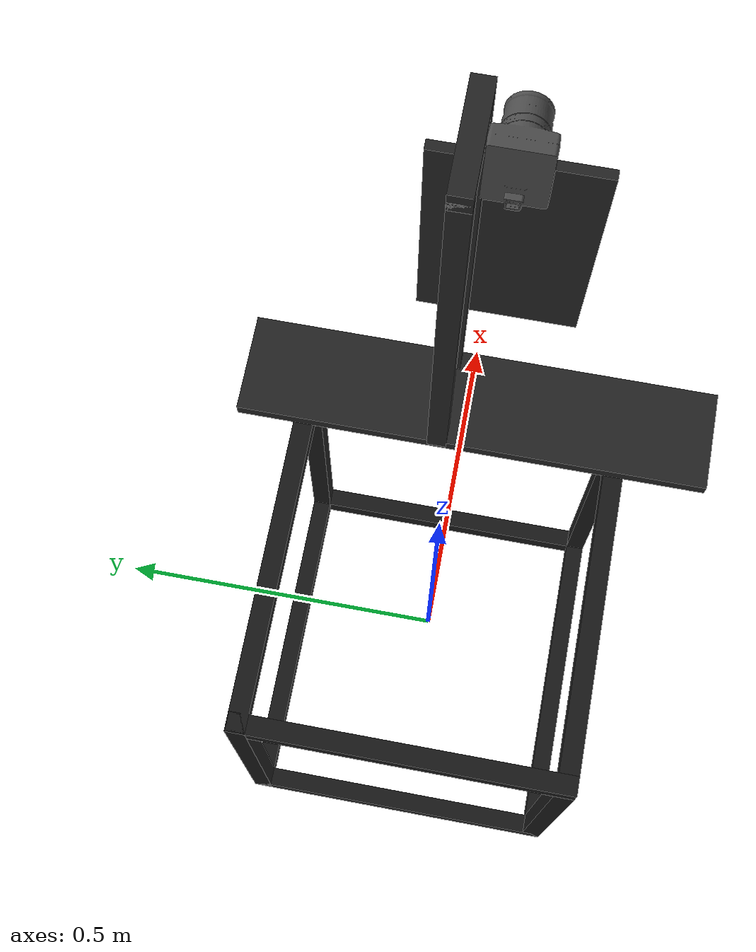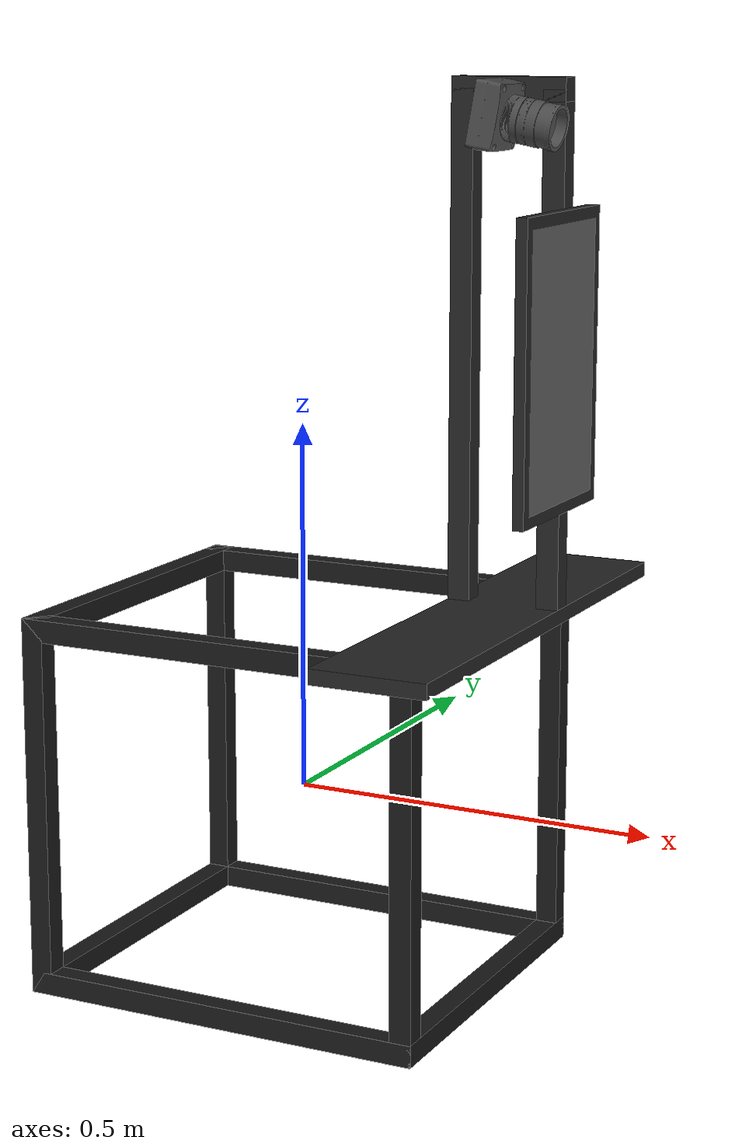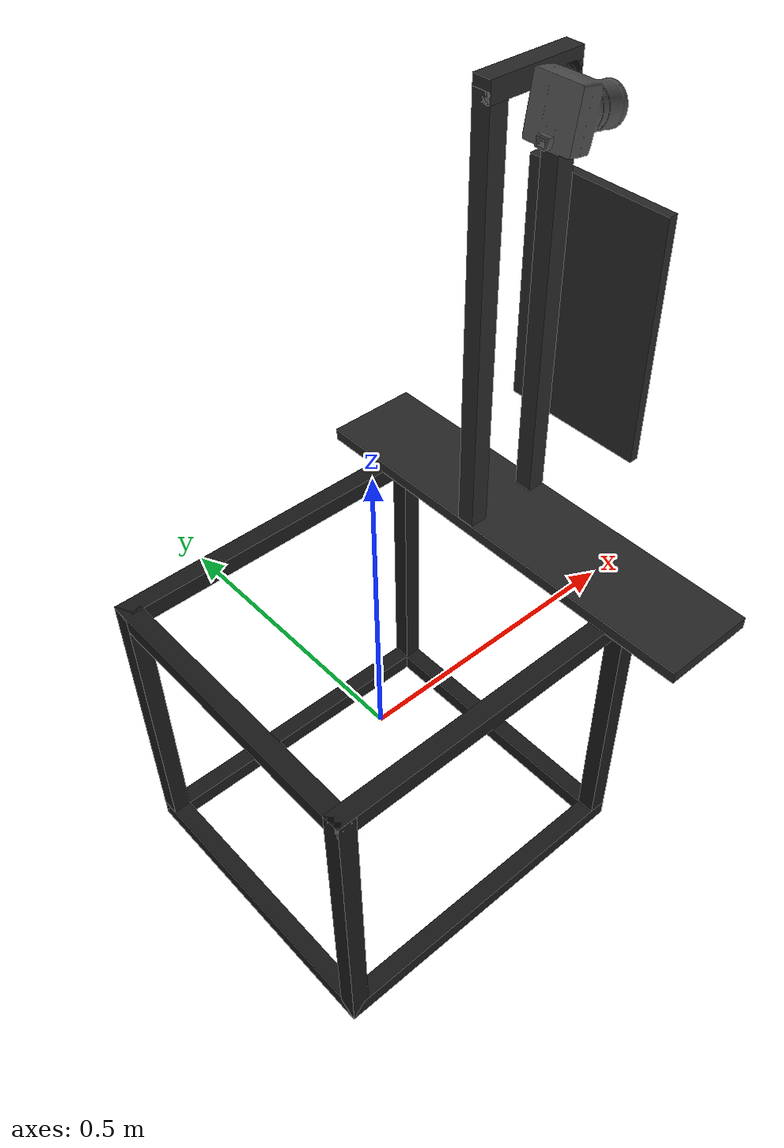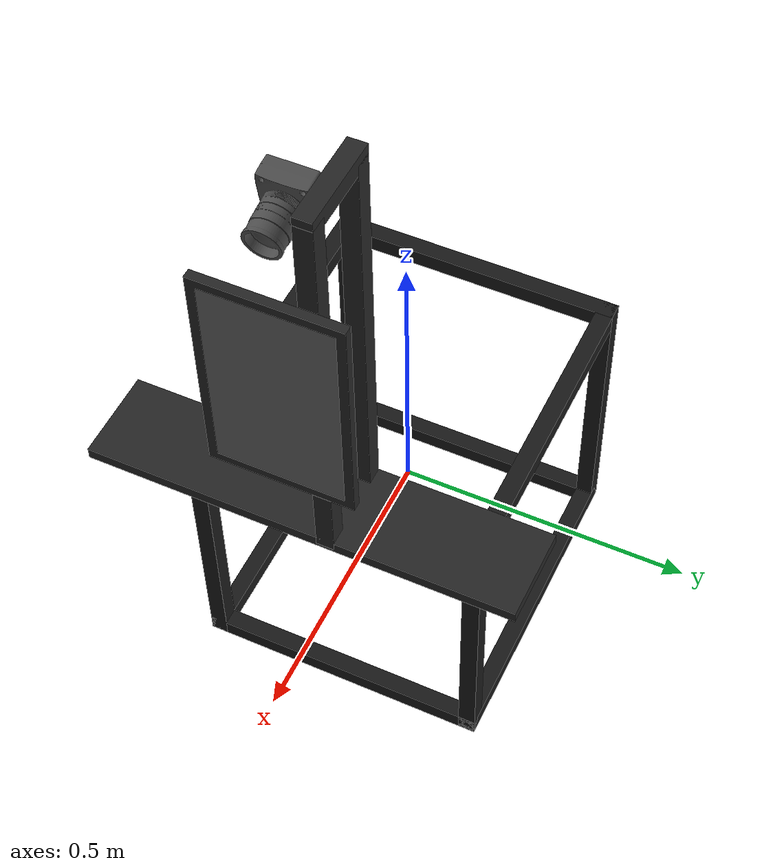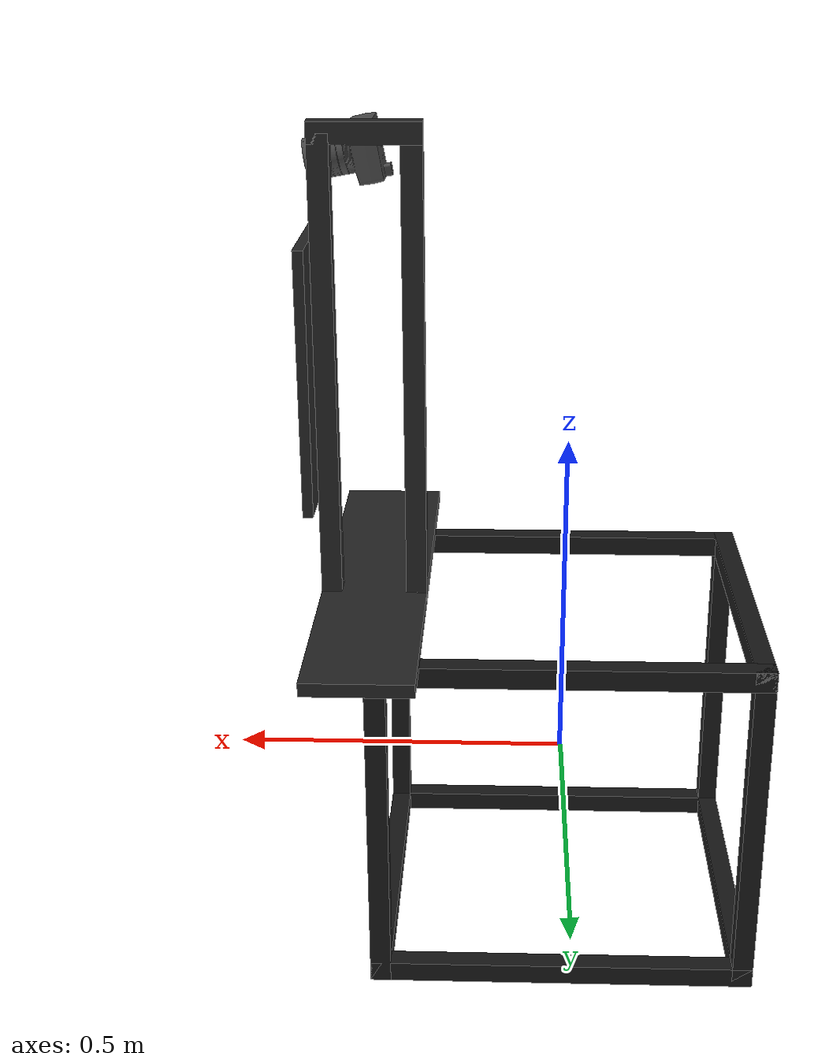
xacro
<?xml version="1.0" encoding="utf-8"?>
<robot xmlns:xacro="http://www.ros.org/wiki/xacro" name="panda">

	<!-- box shaped table as base for the 2 Pandas -->
	<!-- prop in meters -->

  <xacro:property name="height_base" value="0.52"/>
  <xacro:property name="width_base" value="0.51"/>
  <xacro:property name="length_base" value="0.565"/>
  <xacro:property name="dist_arms" value="0.54"/>
  <xacro:property name="edge_thickness" value="0.03" />

	<link name="base">
		<!-- Box edge visualization -->
		<!-- Top face -->
		<visual>
			<origin xyz="${length_base/2-edge_thickness/2} 0 ${-height_base/2 + edge_thickness/2}" rpy="0 0 0"/>
			<geometry>
				<box size="${edge_thickness} ${width_base} ${edge_thickness}" />
			</geometry>
			<material name="Mat Black 1">
				<color rgba="0.1 0.1 0.1 1.0"/>
			</material>
		</visual>

		<visual>
			<origin xyz="${length_base/2-edge_thickness/2} 0 ${height_base/2 - edge_thickness/2}" rpy="0 0 0"/>
			<geometry>
				<box size="${edge_thickness} ${width_base} ${edge_thickness}" />
			</geometry>
			<material name="Mat Black 1">
				<color rgba="0.1 0.1 0.1 1.0"/>
			</material>
		</visual>

		<visual>
			<origin xyz="${length_base/2-edge_thickness/2} ${-width_base/2 + edge_thickness/2} 0" rpy="0 0 0"/>
			<geometry>
				<box size="${edge_thickness} ${edge_thickness} ${height_base}" />
			</geometry>
			<material name="Mat Black 1">
				<color rgba="0.1 0.1 0.1 1.0"/>
			</material>
		</visual>

		<visual>
			<origin xyz="${length_base/2-edge_thickness/2} ${width_base/2 - edge_thickness/2} 0" rpy="0 0 0"/>
			<geometry>
				<box size="${edge_thickness} ${edge_thickness} ${height_base}" />
			</geometry>
			<material name="Mat Black 1">
				<color rgba="0.1 0.1 0.1 1.0"/>
			</material>
		</visual>

		<!-- Bottom face -->
		<visual>
			<origin xyz="${-length_base/2+edge_thickness/2} 0 ${-height_base/2 + edge_thickness/2}" rpy="0 0 0"/>
			<geometry>
				<box size="${edge_thickness} ${width_base} ${edge_thickness}" />
			</geometry>
			<material name="Mat Black 1">
				<color rgba="0.1 0.1 0.1 1.0"/>
			</material>
		</visual>

		<visual>
			<origin xyz="${-length_base/2+edge_thickness/2} 0 ${height_base/2 - edge_thickness/2}" rpy="0 0 0"/>
			<geometry>
				<box size="${edge_thickness} ${width_base} ${edge_thickness}" />
			</geometry>
			<material name="Mat Black 1">
				<color rgba="0.1 0.1 0.1 1.0"/>
			</material>
		</visual>

		<visual>
			<origin xyz="${-length_base/2+edge_thickness/2} ${-width_base/2 + edge_thickness/2} 0" rpy="0 0 0"/>
			<geometry>
				<box size="${edge_thickness} ${edge_thickness} ${height_base}" />
			</geometry>
			<material name="Mat Black 1">
				<color rgba="0.1 0.1 0.1 1.0"/>
			</material>
		</visual>

		<visual>
			<origin xyz="${-length_base/2+edge_thickness/2} ${width_base/2 - edge_thickness/2} 0" rpy="0 0 0"/>
			<geometry>
				<box size="${edge_thickness} ${edge_thickness} ${height_base}" />
			</geometry>
			<material name="Mat Black 1">
				<color rgba="0.1 0.1 0.1 1.0"/>
			</material>
		</visual>

		<!-- Side faces -->

		<!-- right -->
		<visual>
			<origin xyz="0 ${width_base/2-edge_thickness/2} ${-height_base/2 + edge_thickness/2}" rpy="0 0 0"/>
			<geometry>
				<box size="${length_base} ${edge_thickness} ${edge_thickness}" />
			</geometry>
			<material name="Mat Black 1">
				<color rgba="0.1 0.1 0.1 1.0"/>
			</material>
		</visual>

		<visual>
			<origin xyz="0 ${width_base/2-edge_thickness/2} ${height_base/2 - edge_thickness/2}" rpy="0 0 0"/>
			<geometry>
				<box size="${length_base} ${edge_thickness} ${edge_thickness}" />
			</geometry>
			<material name="Mat Black 1">
				<color rgba="0.1 0.1 0.1 1.0"/>
			</material>
		</visual>

		<visual>
			<origin xyz="${-length_base/2 + edge_thickness/2} ${width_base/2-edge_thickness/2} 0" rpy="0 0 0"/>
			<geometry>
				<box size="${edge_thickness} ${edge_thickness} ${height_base}" />
			</geometry>
			<material name="Mat Black 1">
				<color rgba="0.1 0.1 0.1 1.0"/>
			</material>
		</visual>

		<visual>
			<origin xyz="${length_base/2 - edge_thickness/2} ${width_base/2-edge_thickness/2} 0" rpy="0 0 0"/>
			<geometry>
				<box size="${edge_thickness} ${edge_thickness} ${height_base}" />
			</geometry>
			<material name="Mat Black 1">
				<color rgba="0.1 0.1 0.1 1.0"/>
			</material>
		</visual>

		<!-- left -->
		<visual>
			<origin xyz="0 ${-width_base/2+edge_thickness/2} ${-height_base/2 + edge_thickness/2}" rpy="0 0 0"/>
			<geometry>
				<box size="${length_base} ${edge_thickness} ${edge_thickness}" />
			</geometry>
			<material name="Mat Black 1">
				<color rgba="0.1 0.1 0.1 1.0"/>
			</material>
		</visual>

		<visual>
			<origin xyz="0 ${-width_base/2+edge_thickness/2} ${height_base/2 - edge_thickness/2}" rpy="0 0 0"/>
			<geometry>
				<box size="${length_base} ${edge_thickness} ${edge_thickness}" />
			</geometry>
			<material name="Mat Black 1">
				<color rgba="0.1 0.1 0.1 1.0"/>
			</material>
		</visual>

		<visual>
			<origin xyz="${-length_base/2 + edge_thickness/2} ${-width_base/2+edge_thickness/2} 0" rpy="0 0 0"/>
			<geometry>
				<box size="${edge_thickness} ${edge_thickness} ${height_base}" />
			</geometry>
			<material name="Mat Black 1">
				<color rgba="0.1 0.1 0.1 1.0"/>
			</material>
		</visual>

		<visual>
			<origin xyz="${length_base/2 - edge_thickness/2} ${-width_base/2+edge_thickness/2} 0" rpy="0 0 0"/>
			<geometry>
				<box size="${edge_thickness} ${edge_thickness} ${height_base}" />
			</geometry>
			<material name="Mat Black 1">
				<color rgba="0.1 0.1 0.1 1.0"/>
			</material>
		</visual>

		<!-- Solid box collision -->
		<collision>
			<origin xyz="0 0 0" rpy="0 0 0"/>
			<geometry>
				<box size="${length_base} ${width_base} ${height_base}" />
			</geometry>
		</collision>
	</link>

  <xacro:property name="heigth_support" value="0.02"/>
  <xacro:property name="width_support" value="0.721"/>
  <xacro:property name="length_support" value="0.155"/>

  <link name="support">
    <visual>
      <origin xyz="0 0 0" rpy="0 0 0"/>
      <geometry>
        <box size="${length_support} ${width_support} ${heigth_support}" />
      </geometry>
      <material name="Mat Black 2">
        <color rgba="0.15 0.15 0.15 1.0"/>
      </material>
    </visual>
    <collision>
      <origin xyz="0 0 0" rpy="0 0 0"/>
      <geometry>
        <box size="${length_support} ${width_support} ${heigth_support}" />
      </geometry>
    </collision>
  </link>

  <xacro:property name="heigth_cam_support" value="0.675"/>
  <xacro:property name="length_cam_support" value="0.155"/>

	<link name="cam_support">

    <visual>
      <origin xyz="${-length_cam_support/2+edge_thickness/2} 0 ${heigth_cam_support/2-edge_thickness/2}" rpy="0 0 0"/>
      <geometry>
        <box size="${edge_thickness} ${edge_thickness} ${heigth_cam_support}" />
      </geometry>
      <material name="Mat Black 2">
        <color rgba="0.15 0.15 0.15 1.0"/>
      </material>
    </visual>

    <visual>
      <origin xyz="${+length_cam_support/2-edge_thickness/2} 0 ${heigth_cam_support/2-edge_thickness/2}" rpy="0 0 0"/>
      <geometry>
        <box size="${edge_thickness} ${edge_thickness} ${heigth_cam_support}" />
      </geometry>
      <material name="Mat Black 2">
        <color rgba="0.15 0.15 0.15 1.0"/>
      </material>
    </visual>

    <visual>
      <origin xyz="0 0 ${heigth_cam_support-edge_thickness/2}" rpy="0 0 0"/>
      <geometry>
        <box size="${length_cam_support} ${edge_thickness} ${edge_thickness}" />
      </geometry>
      <material name="Mat Black 2">
        <color rgba="0.15 0.15 0.15 1.0"/>
      </material>
    </visual>

    <collision>
      <origin xyz="0 0 0" rpy="0 0 0"/>
      <geometry>
        <box size="${length_cam_support} ${edge_thickness} ${heigth_cam_support}" />
      </geometry>
    </collision>
  </link>

	<link name="camera">
		<visual>
			<origin xyz="0 0 0" rpy="0 0 0"/>
			<geometry>
				<mesh filename="package://avatar_robot_description/meshes/visual/Digital_Camera_USB.stl"/>
			</geometry>
			<material name="">
				<color rgba="0.3 0.3 0.3 1"/>
			</material>
		</visual>
		<collision>
			<origin xyz="0 0 0" rpy="0 0 0"/>
			<geometry>
				<mesh filename="package://avatar_robot_description/meshes/visual/Digital_Camera_USB.stl"/>
			</geometry>
		</collision>
	</link>

	<link name="screen">
    <visual>
      <origin xyz="-0.0001 0 0" rpy="0 0 0"/>
      <geometry>
        <box size="0.015 0.235 0.38" />
      </geometry>
      <material name="Mat Black 2">
        <color rgba="0.15 0.15 0.15 1.0"/>
      </material>
    </visual>

		<visual>
      <origin xyz="0 0 0" rpy="0 0 0"/>
      <geometry>
        <box size="0.015 0.205 0.35" />
      </geometry>
      <material name="">
        <color rgba="0.70 0.70 0.70 0.5"/>
      </material>
    </visual>

		<collision>
			<origin xyz="0 0 0" rpy="0 0 0"/>
			<geometry>
				<box size="0.015 0.225 0.37" />
			</geometry>
		</collision>
	</link>

	<!-- joints -->

  <xacro:property name="support_dyssymetry" value="-0.018"/>
  <xacro:property name="cam_support_dyssymetry" value="0.0505"/>

  <joint name="fixed_joint" type="fixed">
    <parent link="base"/>
    <child link="support"/>
    <origin xyz="${length_base/2} ${support_dyssymetry} ${height_base/2+heigth_support/2}" rpy="0 0 0"/>
  </joint>

  <joint name="fixed_joint_2" type="fixed">
    <parent link="support"/>
    <child link="cam_support"/>
    <origin xyz="0 ${cam_support_dyssymetry} ${heigth_support/2}" rpy="0 0 0"/>
  </joint>

  <joint name="fixed_joint_3" type="fixed">
    <parent link="cam_support"/>
    <child link="camera"/>
    <origin xyz="0 -0.055 ${heigth_cam_support-0.045}" rpy="0 1.75 0"/>
  </joint>

  <joint name="fixed_joint_4" type="fixed">
    <parent link="cam_support"/>
    <child link="screen"/>
    <origin xyz="${length_cam_support/2+0.01} -0.055 0.325" rpy="0 0 0"/>
  </joint>

</robot>
